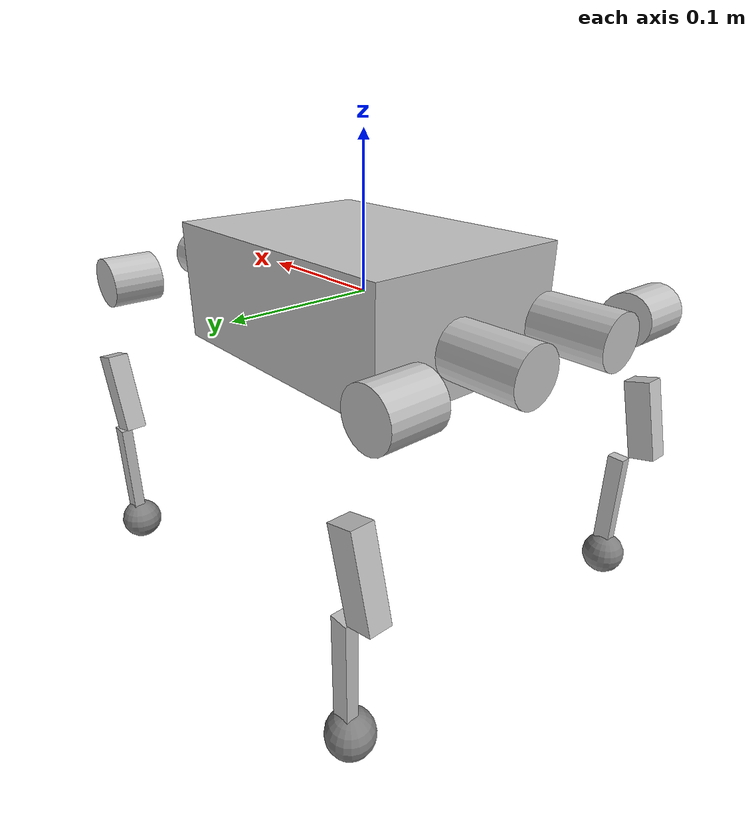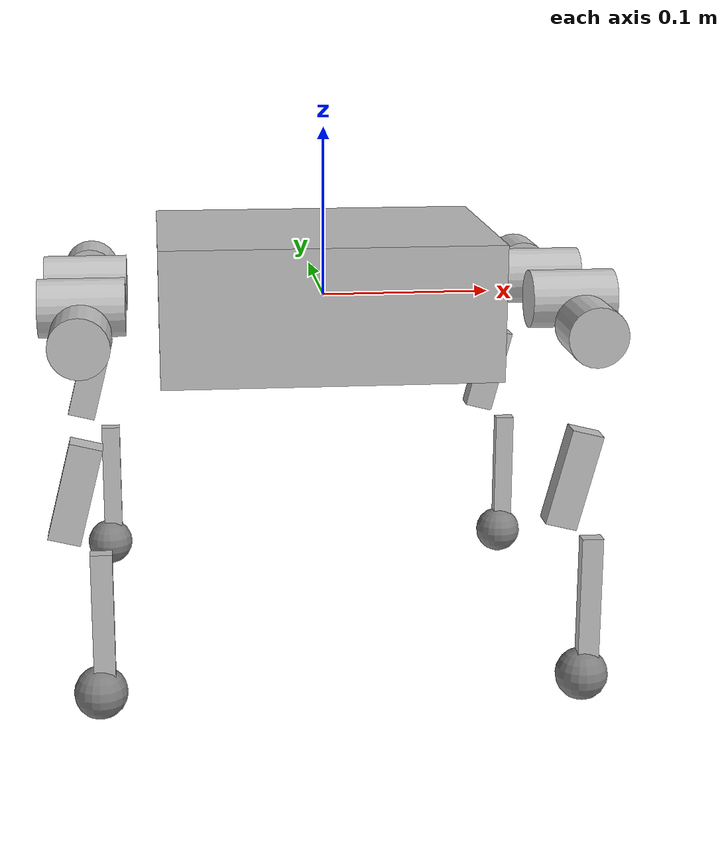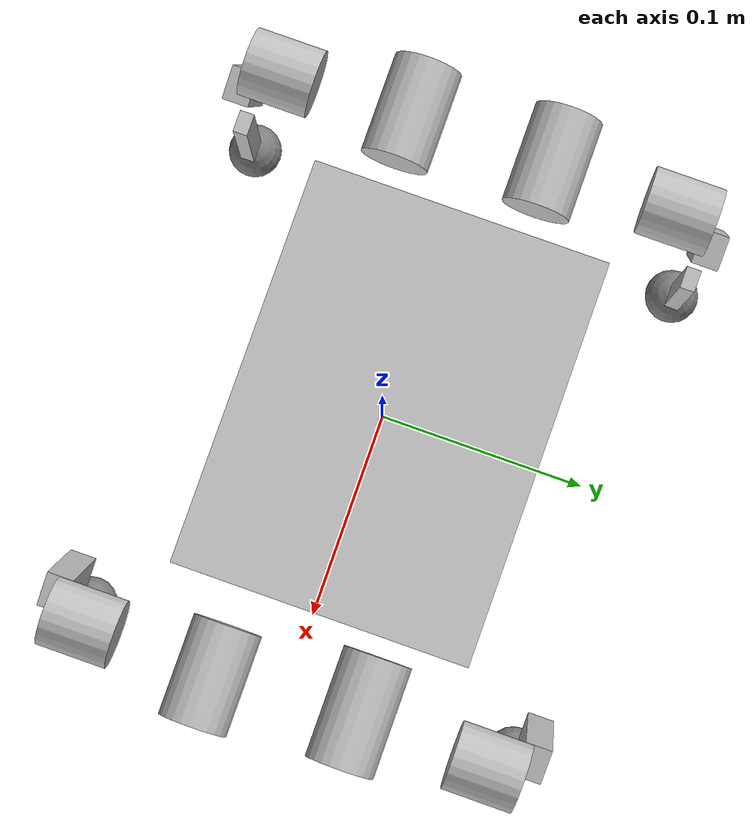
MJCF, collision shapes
<mujoco model="opendoge">
  <compiler angle="radian" meshdir="assets" autolimits="true" />
  <default>
    <default class="opendoge">
      <default class="visual">
        <geom type="mesh" contype="0" conaffinity="0" density="0" group="2" />
      </default>
      <default class="collision">
        <geom priority="1" condim="6" group="3" />
      </default>
      <site rgba="1 0 0 1" group="5" />
    </default>
  </default>
  <asset>
    <mesh name="base_link" file="base_link.STL" />
    <mesh name="FL_hip" file="FL_hip.STL" />
    <mesh name="FL_thigh" file="FL_thigh.STL" />
    <mesh name="FL_calf" file="FL_calf.STL" />
    <mesh name="FR_hip" file="FR_hip.STL" />
    <mesh name="FR_thigh" file="FR_thigh.STL" />
    <mesh name="FR_calf" file="FR_calf.STL" />
    <mesh name="RL_hip" file="RL_hip.STL" />
    <mesh name="RL_thigh" file="RL_thigh.STL" />
    <mesh name="RL_calf" file="RL_calf.STL" />
    <mesh name="RR_hip" file="RR_hip.STL" />
    <mesh name="RR_thigh" file="RR_thigh.STL" />
    <mesh name="RR_calf" file="RR_calf.STL" />
  </asset>
  <worldbody>
    <body name="base_link" childclass="opendoge">
      <inertial pos="0.0002 0.0020 0.0005" mass="1.6346" diaginertia="0.0027 0.0070 0.0091" />
      <freejoint name="floating_base_joint" />
      <geom type="mesh" mesh="base_link" class="visual" rgba="0.75294 0.75294 0.75294 1" />
      <geom size="0.099 0.0725 0.04" pos="0 0.004 0" type="box" rgba="0.75294 0.75294 0.75294 1" name="base_collision" class="collision" />
      <site name="imu" pos="0 0 0.03" />
      <body name="FL_hip" pos="0.095 0.04 0.002">
        <inertial pos="0.0381 -0.0008 0" mass="0.2945" diaginertia="0.0001 0.0001 0.0001" />
        <joint name="FL_hip_joint" pos="0 0 0" axis="1 0 0" range="-1.0468 0.521799" actuatorfrcrange="-6 6" />
        <geom type="mesh" mesh="FL_hip" class="visual" rgba="0.75294 0.75294 0.75294 1" />
        <geom size="0.017 0.0275" pos="0.041 -0.004 0" quat="0.707105 0 0.707108 0" type="cylinder" rgba="0.75294 0.75294 0.75294 1" name="FL_hip_collision" class="collision" />
        <body name="FL_thigh" pos="0.04105 0.022 0">
          <inertial pos="0.0012 0.0369 -0.0052" quat="0.92388 0.382683 0 0" mass="0.412" diaginertia="0.0004 0.0004 0.0002" />
          <joint name="FL_thigh_joint" pos="0 0 0" axis="0 1 0" range="-1.0468 1.3958" actuatorfrcrange="-6 6" />
          <geom type="mesh" mesh="FL_thigh" class="visual" rgba="0.75294 0.75294 0.75294 1" />
          <geom size="0.017 0.0175" pos="0.004 0.04 -0.005" quat="0.707105 0.707108 0 0" type="cylinder" rgba="0.75294 0.75294 0.75294 1" name="FL_thigh_collision" class="collision" />
          <geom size="0.009 0.007 0.0275" pos="-0.01 0.064 -0.082" quat="0.992198 0 0.124675 0" type="box" rgba="0.75294 0.75294 0.75294 1" name="FL_thigh_collision2" class="collision" />
          <body name="FL_calf" pos="0 0.06305 -0.1">
            <inertial pos="0.00571957 0.00106636 -0.056667" quat="0.704821 0.0129568 0.0140595 0.709128" mass="0.0327" diaginertia="2.97688e-05 2.90317e-05 1.19763e-06" />
            <joint name="FL_calf_joint" pos="0 0 0" axis="0 1 0" range="-2.68 -1.04" actuatorfrcrange="-9 9" />
            <geom type="mesh" mesh="FL_calf" class="visual" rgba="0.75294 0.75294 0.75294 1" />
            <geom size="0.006 0.004 0.0375" pos="0.0025 0.001 -0.055" type="box" rgba="0.75294 0.75294 0.75294 1" name="FL_calf_collision" class="collision" />
            <geom size="0.015" pos="0 0 -0.1" name="FL_foot_collision" type="sphere" class="collision" />
            <site name="FL" type="sphere" size="0.015" pos="0 0 -0.1" group="5" />
          </body>
        </body>
      </body>
      <body name="FR_hip" pos="0.095 -0.04 0.002">
        <inertial pos="0.0381 0.0008 0" mass="0.2945" diaginertia="0.0001 0.0001 0.0001" />
        <joint name="FR_hip_joint" pos="0 0 0" axis="1 0 0" range="-0.521799 1.0468" actuatorfrcrange="-6 6" />
        <geom type="mesh" mesh="FR_hip" class="visual" rgba="0.75294 0.75294 0.75294 1" />
        <geom size="0.017 0.025" pos="0.048 0.004 0" quat="0.707105 0 0.707108 0" type="cylinder" rgba="0.75294 0.75294 0.75294 1" name="FR_hip_collision" class="collision" />
        <body name="FR_thigh" pos="0.04105 -0.022 0">
          <inertial pos="0.0012 -0.0369 -0.0052" quat="0.92388 -0.382683 0 0" mass="0.412" diaginertia="0.0004 0.0004 0.0002" />
          <joint name="FR_thigh_joint" pos="0 0 0" axis="0 -1 0" range="-1.3958 1.0468" actuatorfrcrange="-6 6" />
          <geom type="mesh" mesh="FR_thigh" class="visual" rgba="0.75294 0.75294 0.75294 1" />
          <geom size="0.017 0.0175" pos="0.004 -0.04 -0.005" quat="0.707105 0.707108 0 0" type="cylinder" rgba="0.75294 0.75294 0.75294 1" name="FR_thigh_collision" class="collision" />
          <geom size="0.009 0.007 0.0275" pos="-0.01 -0.064 -0.082" quat="0.992198 0 0.124675 0" type="box" rgba="0.75294 0.75294 0.75294 1" name="FR_thigh_collision2" class="collision" />
          <body name="FR_calf" pos="0 -0.06305 -0.1">
            <inertial pos="0.00571957 -0.00106636 -0.056667" quat="0.709128 0.0140595 0.0129568 0.704821" mass="0.0327" diaginertia="2.97688e-05 2.90317e-05 1.19763e-06" />
            <joint name="FR_calf_joint" pos="0 0 0" axis="0 -1 0" range="1.04 2.68" actuatorfrcrange="-9 9" />
            <geom type="mesh" mesh="FR_calf" class="visual" rgba="0.75294 0.75294 0.75294 1" />
            <geom size="0.006 0.004 0.0375" pos="0.0025 -0.001 -0.055" type="box" rgba="0.75294 0.75294 0.75294 1" name="FR_calf_collision" class="collision" />
            <geom size="0.015" pos="0 0 -0.1" name="FR_foot_collision" type="sphere" class="collision" />
            <site name="FR" type="sphere" size="0.015" pos="0 0 -0.1" group="5" />
          </body>
        </body>
      </body>
      <body name="RL_hip" pos="-0.095 0.04 0.002">
        <inertial pos="-0.0381 -0.0008 0" mass="0.2945" diaginertia="0.0001 0.0001 0.0001" />
        <joint name="RL_hip_joint" pos="0 0 0" axis="-1 0 0" range="-0.521799 1.0468" actuatorfrcrange="-6 6" />
        <geom type="mesh" mesh="RL_hip" class="visual" rgba="0.75294 0.75294 0.75294 1" />
        <geom size="0.017 0.025" pos="-0.048 -0.004 0" quat="0.707105 0 0.707108 0" type="cylinder" rgba="0.75294 0.75294 0.75294 1" name="RL_hip_collision" class="collision" />
        <body name="RL_thigh" pos="-0.04105 0.022 0">
          <inertial pos="-0.0037 0.0369 -0.008" quat="0.92388 0.382683 0 0" mass="0.412" diaginertia="0.0004 0.0004 0.0002" />
          <joint name="RL_thigh_joint" pos="0 0 0" axis="0 1 0" range="-1.0468 1.3958" actuatorfrcrange="-6 6" />
          <geom type="mesh" mesh="RL_thigh" class="visual" rgba="0.75294 0.75294 0.75294 1" />
          <geom size="0.017 0.0175" pos="-0.006 0.04 -0.005" quat="0.707105 0.707108 0 0" type="cylinder" rgba="0.75294 0.75294 0.75294 1" name="RL_thigh_collision" class="collision" />
          <geom size="0.009 0.007 0.0275" pos="-0.01 0.064 -0.082" quat="0.992198 0 0.124675 0" type="box" rgba="0.75294 0.75294 0.75294 1" name="RL_thigh_collision2" class="collision" />
          <body name="RL_calf" pos="0 0.06305 -0.1">
            <inertial pos="0.00581651 0.00106636 -0.056667" quat="0.704818 0.014109 0.015206 0.709085" mass="0.0327" diaginertia="2.977e-05 2.90339e-05 1.19728e-06" />
            <joint name="RL_calf_joint" pos="0 0 0" axis="0 1 0" range="-2.68 -1.04" actuatorfrcrange="-9 9" />
            <geom type="mesh" mesh="RL_calf" class="visual" rgba="0.75294 0.75294 0.75294 1" />
            <geom size="0.006 0.004 0.0375" pos="0.0025 0.001 -0.055" type="box" rgba="0.75294 0.75294 0.75294 1" name="RL_calf_collision" class="collision" />
            <geom size="0.015" pos="0 0 -0.1" name="RL_foot_collision" type="sphere" class="collision" />
            <site name="RL" type="sphere" size="0.015" pos="0 0 -0.1" group="5" />
          </body>
        </body>
      </body>
      <body name="RR_hip" pos="-0.095 -0.04 0.002">
        <inertial pos="-0.0381 0.0008 0" mass="0.2945" diaginertia="0.0001 0.0001 0.0001" />
        <joint name="RR_hip_joint" pos="0 0 0" axis="-1 0 0" range="-1.0468 0.521799" actuatorfrcrange="-6 6" />
        <geom type="mesh" mesh="RR_hip" class="visual" rgba="0.75294 0.75294 0.75294 1" />
        <geom size="0.017 0.025" pos="-0.048 0.004 0" quat="0.707105 0 0.707108 0" type="cylinder" rgba="0.75294 0.75294 0.75294 1" name="RR_hip_collision" class="collision" />
        <body name="RR_thigh" pos="-0.04105 -0.022 0">
          <inertial pos="-0.0037 -0.0369 -0.008" quat="0.92388 -0.382683 0 0" mass="0.412" diaginertia="0.0004 0.0004 0.0002" />
          <joint name="RR_thigh_joint" pos="0 0 0" axis="0 -1 0" range="-1.3958 1.0468" actuatorfrcrange="-6 6" />
          <geom type="mesh" mesh="RR_thigh" class="visual" rgba="0.75294 0.75294 0.75294 1" />
          <geom size="0.017 0.0175" pos="-0.006 -0.04 -0.005" quat="0.707105 0.707108 0 0" type="cylinder" rgba="0.75294 0.75294 0.75294 1" name="RR_thigh_collision" class="collision" />
          <geom size="0.009 0.007 0.0275" pos="-0.01 -0.064 -0.082" quat="0.992198 0 0.124675 0" type="box" rgba="0.75294 0.75294 0.75294 1" name="RR_thigh_collision2" class="collision" />
          <body name="RR_calf" pos="0 -0.06305 -0.1">
            <inertial pos="0.00581651 -0.00106636 -0.056667" quat="0.709085 0.015206 0.014109 0.704818" mass="0.0327" diaginertia="2.977e-05 2.90339e-05 1.19728e-06" />
            <joint name="RR_calf_joint" pos="0 0 0" axis="0 -1 0" range="1.04 2.68" actuatorfrcrange="-9 9" />
            <geom type="mesh" mesh="RR_calf" class="visual" rgba="0.75294 0.75294 0.75294 1" />
            <geom size="0.006 0.004 0.0375" pos="0.0025 -0.001 -0.055" type="box" rgba="0.75294 0.75294 0.75294 1" name="RR_calf_collision" class="collision" />
            <geom size="0.015" pos="0 0 -0.1" name="RR_foot_collision" type="sphere" class="collision" />
            <site name="RR" type="sphere" size="0.015" pos="0 0 -0.1" group="5" />
          </body>
        </body>
      </body>
    </body>
  </worldbody>
  <sensor>
    <gyro name="imu_ang_vel" site="imu" />
    <velocimeter name="imu_lin_vel" site="imu" />
    <accelerometer name="imu_lin_acc" site="imu" />
    <subtreeangmom name="root_angmom" body="base_link" />
  </sensor>
</mujoco>
